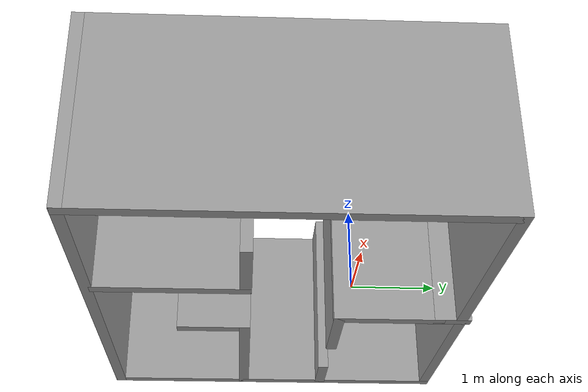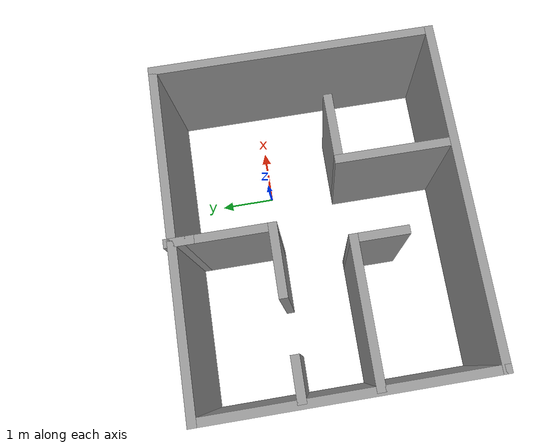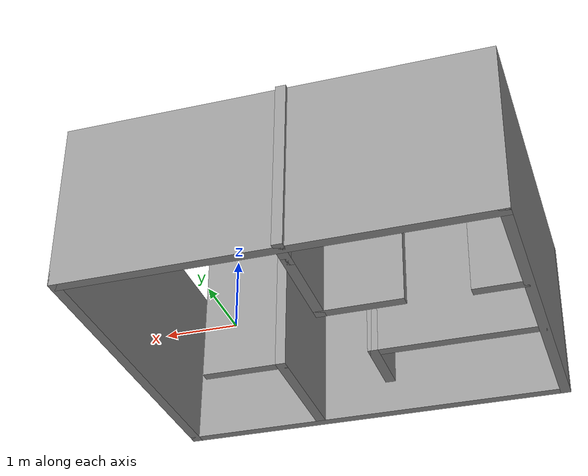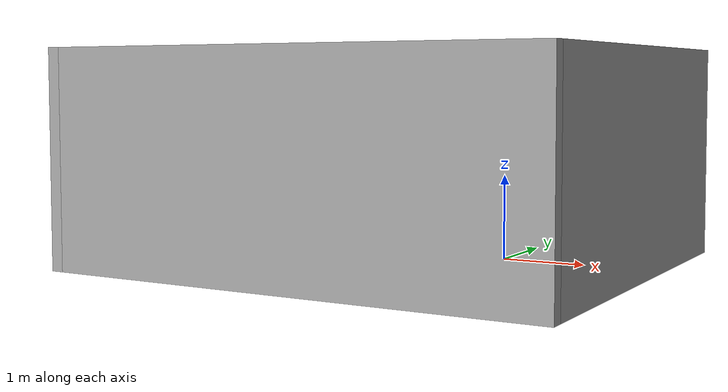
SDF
<?xml version='1.0'?>
<sdf version='1.7'>
  <model name='room1'>
    <pose>-1.045 -0.785049 0 0 -0 0</pose>
    <link name='Wall_0'>
      <collision name='Wall_0_Collision'>
        <geometry>
          <box>
            <size>5 0.15 2.5</size>
          </box>
        </geometry>
        <pose>0 0 1.25 0 -0 0</pose>
      </collision>
      <visual name='Wall_0_Visual'>
        <pose>0 0 1.25 0 -0 0</pose>
        <geometry>
          <box>
            <size>5 0.15 2.5</size>
          </box>
        </geometry>
        <material>
          <script>
            <uri>file://media/materials/scripts/gazebo.material</uri>
            <name>Gazebo/Grey</name>
          </script>
          <ambient>1 1 1 1</ambient>
        </material>
        <meta>
          <layer>0</layer>
        </meta>
      </visual>
      <pose>-2.925 -0.029951 0 0 -0 1.5708</pose>
    </link>
    <link name='Wall_1'>
      <collision name='Wall_1_Collision'>
        <geometry>
          <box>
            <size>6 0.15 2.5</size>
          </box>
        </geometry>
        <pose>0 0 1.25 0 -0 0</pose>
      </collision>
      <visual name='Wall_1_Visual'>
        <pose>0 0 1.25 0 -0 0</pose>
        <geometry>
          <box>
            <size>6 0.15 2.5</size>
          </box>
        </geometry>
        <material>
          <script>
            <uri>file://media/materials/scripts/gazebo.material</uri>
            <name>Gazebo/Grey</name>
          </script>
          <ambient>1 1 1 1</ambient>
        </material>
        <meta>
          <layer>0</layer>
        </meta>
      </visual>
      <pose>0 2.39505 0 0 -0 0</pose>
    </link>
    <link name='Wall_11'>
      <collision name='Wall_11_Collision'>
        <geometry>
          <box>
            <size>2.5 0.15 2.5</size>
          </box>
        </geometry>
        <pose>0 0 1.25 0 -0 0</pose>
      </collision>
      <visual name='Wall_11_Visual'>
        <pose>0 0 1.25 0 -0 0</pose>
        <geometry>
          <box>
            <size>2.5 0.15 2.5</size>
          </box>
        </geometry>
        <material>
          <script>
            <uri>file://media/materials/scripts/gazebo.material</uri>
            <name>Gazebo/Grey</name>
          </script>
          <ambient>1 1 1 1</ambient>
        </material>
        <meta>
          <layer>0</layer>
        </meta>
      </visual>
      <pose>-1.70608 -0.501423 0 0 -0 0</pose>
    </link>
    <link name='Wall_12'>
      <collision name='Wall_12_Collision'>
        <geometry>
          <box>
            <size>1 0.15 2.5</size>
          </box>
        </geometry>
        <pose>0 0 1.25 0 -0 0</pose>
      </collision>
      <visual name='Wall_12_Visual'>
        <pose>0 0 1.25 0 -0 0</pose>
        <geometry>
          <box>
            <size>1 0.15 2.5</size>
          </box>
        </geometry>
        <material>
          <script>
            <uri>file://media/materials/scripts/gazebo.material</uri>
            <name>Gazebo/Grey</name>
          </script>
          <ambient>1 1 1 1</ambient>
        </material>
        <meta>
          <layer>0</layer>
        </meta>
      </visual>
      <pose>-0.531077 -0.926423 0 0 -0 -1.5708</pose>
    </link>
    <link name='Wall_14'>
      <collision name='Wall_14_Collision'>
        <geometry>
          <box>
            <size>2 0.15 2.5</size>
          </box>
        </geometry>
        <pose>0 0 1.25 0 -0 0</pose>
      </collision>
      <visual name='Wall_14_Visual'>
        <pose>0 0 1.25 0 -0 0</pose>
        <geometry>
          <box>
            <size>2 0.15 2.5</size>
          </box>
        </geometry>
        <material>
          <script>
            <uri>file://media/materials/scripts/gazebo.material</uri>
            <name>Gazebo/Grey</name>
          </script>
          <ambient>1 1 1 1</ambient>
        </material>
        <meta>
          <layer>0</layer>
        </meta>
      </visual>
      <pose>0.834566 -1.42357 0 0 -0 1.5708</pose>
    </link>
    <link name='Wall_15'>
      <collision name='Wall_15_Collision'>
        <geometry>
          <box>
            <size>1.25 0.15 2.5</size>
          </box>
        </geometry>
        <pose>0 0 1.25 0 -0 0</pose>
      </collision>
      <visual name='Wall_15_Visual'>
        <pose>0 0 1.25 0 -0 0</pose>
        <geometry>
          <box>
            <size>1.25 0.15 2.5</size>
          </box>
        </geometry>
        <material>
          <script>
            <uri>file://media/materials/scripts/gazebo.material</uri>
            <name>Gazebo/Grey</name>
          </script>
          <ambient>1 1 1 1</ambient>
        </material>
        <meta>
          <layer>0</layer>
        </meta>
      </visual>
      <pose>1.38457 -0.498574 0 0 -0 0</pose>
    </link>
    <link name='Wall_2'>
      <collision name='Wall_2_Collision'>
        <geometry>
          <box>
            <size>5 0.15 2.5</size>
          </box>
        </geometry>
        <pose>0 0 1.25 0 -0 0</pose>
      </collision>
      <visual name='Wall_2_Visual'>
        <pose>0 0 1.25 0 -0 0</pose>
        <geometry>
          <box>
            <size>5 0.15 2.5</size>
          </box>
        </geometry>
        <material>
          <script>
            <uri>file://media/materials/scripts/gazebo.material</uri>
            <name>Gazebo/Grey</name>
          </script>
          <ambient>1 1 1 1</ambient>
        </material>
        <meta>
          <layer>0</layer>
        </meta>
      </visual>
      <pose>2.925 -0.029951 0 0 -0 -1.5708</pose>
    </link>
    <link name='Wall_3'>
      <collision name='Wall_3_Collision'>
        <geometry>
          <box>
            <size>6 0.15 2.5</size>
          </box>
        </geometry>
        <pose>0 0 1.25 0 -0 0</pose>
      </collision>
      <visual name='Wall_3_Visual'>
        <pose>0 0 1.25 0 -0 0</pose>
        <geometry>
          <box>
            <size>6 0.15 2.5</size>
          </box>
        </geometry>
        <material>
          <script>
            <uri>file://media/materials/scripts/gazebo.material</uri>
            <name>Gazebo/Grey</name>
          </script>
          <ambient>1 1 1 1</ambient>
        </material>
        <meta>
          <layer>0</layer>
        </meta>
      </visual>
      <pose>0 -2.45495 0 0 -0 3.14159</pose>
    </link>
    <link name='Wall_5'>
      <collision name='Wall_5_Collision'>
        <geometry>
          <box>
            <size>0.75 0.15 2.5</size>
          </box>
        </geometry>
        <pose>0 0 1.25 0 -0 0</pose>
      </collision>
      <visual name='Wall_5_Visual'>
        <pose>0 0 1.25 0 -0 0</pose>
        <geometry>
          <box>
            <size>0.75 0.15 2.5</size>
          </box>
        </geometry>
        <material>
          <script>
            <uri>file://media/materials/scripts/gazebo.material</uri>
            <name>Gazebo/Grey</name>
          </script>
          <ambient>1 1 1 1</ambient>
        </material>
        <meta>
          <layer>0</layer>
        </meta>
      </visual>
      <pose>-2.55463 0.715277 0 0 -0 0</pose>
    </link>
    <link name='Wall_7'>
      <collision name='Wall_7_Collision'>
        <geometry>
          <box>
            <size>1.25 0.15 2.5</size>
          </box>
        </geometry>
        <pose>0 0 1.25 0 -0 0</pose>
      </collision>
      <visual name='Wall_7_Visual'>
        <pose>0 0 1.25 0 -0 0</pose>
        <geometry>
          <box>
            <size>1.25 0.15 2.5</size>
          </box>
        </geometry>
        <material>
          <script>
            <uri>file://media/materials/scripts/gazebo.material</uri>
            <name>Gazebo/Grey</name>
          </script>
          <ambient>1 1 1 1</ambient>
        </material>
        <meta>
          <layer>0</layer>
        </meta>
      </visual>
      <pose>-0.677952 0.754952 0 0 -0 0</pose>
    </link>
    <link name='Wall_8'>
      <collision name='Wall_8_Collision'>
        <geometry>
          <box>
            <size>1.5 0.15 2.5</size>
          </box>
        </geometry>
        <pose>0 0 1.25 0 -0 0</pose>
      </collision>
      <visual name='Wall_8_Visual'>
        <pose>0 0 1.25 0 -0 0</pose>
        <geometry>
          <box>
            <size>1.5 0.15 2.5</size>
          </box>
        </geometry>
        <material>
          <script>
            <uri>file://media/materials/scripts/gazebo.material</uri>
            <name>Gazebo/Grey</name>
          </script>
          <ambient>1 1 1 1</ambient>
        </material>
        <meta>
          <layer>0</layer>
        </meta>
      </visual>
      <pose>-0.127952 1.42995 0 0 -0 1.5708</pose>
    </link>
    <link name='Wall_9'>
      <collision name='Wall_9_Collision'>
        <geometry>
          <box>
            <size>0.5 0.15 2.5</size>
          </box>
        </geometry>
        <pose>0 0 1.25 0 -0 0</pose>
      </collision>
      <visual name='Wall_9_Visual'>
        <pose>0 0 1.25 0 -0 0</pose>
        <geometry>
          <box>
            <size>0.5 0.15 2.5</size>
          </box>
        </geometry>
        <material>
          <script>
            <uri>file://media/materials/scripts/gazebo.material</uri>
            <name>Gazebo/Grey</name>
          </script>
          <ambient>1 1 1 1</ambient>
        </material>
        <meta>
          <layer>0</layer>
        </meta>
      </visual>
      <pose>-0.127952 2.27995 0 0 -0 1.5708</pose>
    </link>
    <static>1</static>
  </model>
</sdf>
